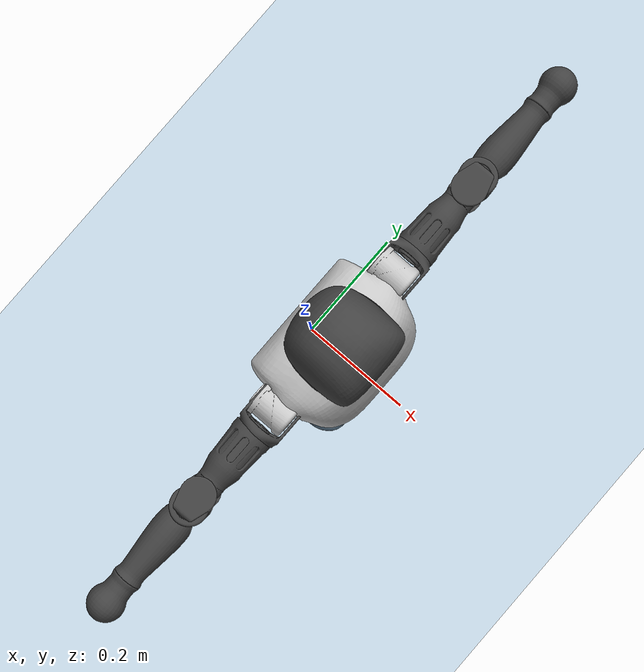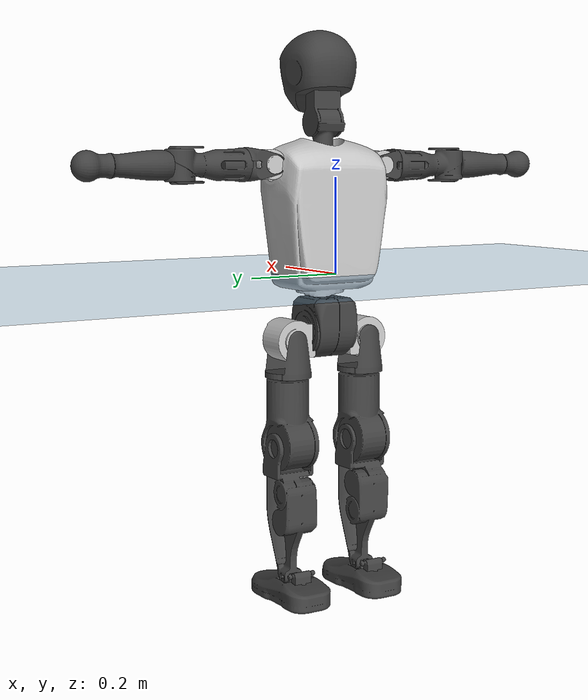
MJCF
<mujoco model="T1">
  <compiler angle="radian" assetdir="assets" balanceinertia="true" inertiafromgeom="false"/>

  <option timestep="0.005" density="1.2" viscosity="2e-05"/>

  <size nkey="1"/>

  <visual>
    <quality shadowsize="8192"/>
    <map shadowclip="0.5"/>
  </visual>

  <default>
    <default class="/">
      <joint armature="0.01" damping="0.01" frictionloss="0.1"/>
      <geom contype="0" conaffinity="0" group="1" solref="-1000 -80"/>
      <site size="0.01 0.005 0.005" group="5"/>
      <general forcelimited="true" biastype="affine" gainprm="25" biasprm="0 -25 -0.6"/>
      <default class="t1">
        <geom rgba="0.25 0.25 0.25 1"/>
        <default class="visual">
          <geom type="mesh" group="2"/>
        </default>
        <default class="collision">
          <geom group="3"/>
        </default>
        <default class="foot">
          <geom size="0.1115 0.05 0.015" type="box" condim="6" group="4" priority="1" solimp="0.015 1 0.015"/>
        </default>
        <default class="reward_collision_sphere">
          <geom group="5" rgba="1 0 0 1"/>
        </default>
      </default>
    </default>
  </default>

  <asset>
    <texture type="skybox" colorspace="auto" name="//unnamed_texture_0" builtin="gradient" rgb1="0.95 0.95 0.95" rgb2="0.95 0.95 0.95" width="100" height="600"/>
    <texture type="2d" colorspace="auto" name="texplane" builtin="checker" rgb1="0.345 0.575 0.748" rgb2="0.345 0.575 0.748" markrgb="1 1 1" width="512" height="512"/>
    <material name="MatPlane" class="/" texture="texplane" texuniform="true" texrepeat="2 2" specular="0.9"/>
    <mesh name="Trunk" class="/" file="Trunk.stl"/>
    <mesh name="H1" class="/" file="H1.stl"/>
    <mesh name="H2" class="/" file="H2.stl"/>
    <mesh name="AL1" class="/" file="AL1.stl"/>
    <mesh name="AL2" class="/" file="AL2.stl"/>
    <mesh name="AL3" class="/" file="AL3.stl"/>
    <mesh name="left_hand_link" class="/" file="left_hand_link.stl"/>
    <mesh name="AR1" class="/" file="AR1.stl"/>
    <mesh name="AR2" class="/" file="AR2.stl"/>
    <mesh name="AR3" class="/" file="AR3.stl"/>
    <mesh name="right_hand_link" class="/" file="right_hand_link.stl"/>
    <mesh name="Waist" class="/" file="Waist.stl"/>
    <mesh name="Hip_Pitch_Left" class="/" file="Hip_Pitch_Left.stl"/>
    <mesh name="Hip_Roll_Left" class="/" file="Hip_Roll_Left.stl"/>
    <mesh name="Hip_Yaw_Left" class="/" file="Hip_Yaw_Left.stl"/>
    <mesh name="Shank_Left" class="/" file="Shank_Left.stl"/>
    <mesh name="Ankle_Cross_Left" class="/" file="Ankle_Cross_Left.stl"/>
    <mesh name="left_foot_link" class="/" file="left_foot_link.stl"/>
    <mesh name="Hip_Pitch_Right" class="/" file="Hip_Pitch_Right.stl"/>
    <mesh name="Hip_Roll_Right" class="/" file="Hip_Roll_Right.stl"/>
    <mesh name="Hip_Yaw_Right" class="/" file="Hip_Yaw_Right.stl"/>
    <mesh name="Shank_Right" class="/" file="Shank_Right.stl"/>
    <mesh name="Ankle_Cross_Right" class="/" file="Ankle_Cross_Right.stl"/>
    <mesh name="right_foot_link" class="/" file="right_foot_link.stl"/>
  </asset>

  <worldbody>
    <geom name="floor" class="/" size="100 100 0.125" type="plane" group="0" material="MatPlane"/>
    <light name="toplight_shadow" class="/" pos="0 0 5" dir="0.0990148 0.0990148 -0.990148" type="directional" ambient="0.04 0.04 0.04" diffuse="0.55 0.55 0.55" specular="0.12 0.12 0.12"/>
    <light name="toplight_fill" class="/" pos="0 0 5" dir="0.0990148 0.0990148 -0.990148" type="directional" castshadow="false" ambient="0.04 0.04 0.04" diffuse="0.3 0.3 0.3" specular="0.08 0.08 0.08"/>
    <body name="trunk" childclass="t1" pos="9.67705e-05 -0.000498211 0.00123936" quat="1 2.73667e-05 -4.66355e-05 -5.03962e-05">
      <inertial pos="0.0447808 -0.00187203 0.108961" quat="0.99995 -0.000193402 -0.0100258 2.24579e-05" mass="8.59578" diaginertia="0.033124 0.0347059 0.0654767"/>
      <joint name="//unnamed_joint_0" type="free" armature="0" damping="0" frictionloss="0"/>
      <geom name="//unnamed_geom_1" class="visual" rgba="0.76 0.76 0.76 1" mesh="Trunk"/>
      <geom name="//unnamed_geom_2" class="collision" size="0.0673955 0.0898607 0.134791" pos="0.0488464 0 0.123751" type="box"/>
      <geom name="//unnamed_geom_3" class="reward_collision_sphere" size="0.10334" pos="0.0488464 0 0.103126"/>
      <geom name="//unnamed_geom_4" class="reward_collision_sphere" size="0.0134791" pos="0.0488464 0.0722885 0"/>
      <geom name="//unnamed_geom_5" class="reward_collision_sphere" size="0.0134791" pos="0.0488464 -0.0722885 0"/>
      <geom name="//unnamed_geom_6" class="reward_collision_sphere" size="0.0134791" pos="0.0488464 0.0909984 0.185627"/>
      <geom name="//unnamed_geom_7" class="reward_collision_sphere" size="0.0134791" pos="0.0488464 -0.0909984 0.185627"/>
      <site name="imu" pos="0.000328894 0.00961224 0.00428253" size="0.00898607"/>
      <camera name="track" pos="0 -1.70091 0" quat="0.707107 0.707107 0 0" mode="trackcom"/>
      <camera name="ego_camera" pos="0.0993211 0 0.43313" quat="-0.5 -0.5 0.5 0.5"/>
      <body name="H1" pos="0.0507653 -0.000527683 0.251178" quat="1 -0.00014869 0.000815301 0.000273366">
        <inertial pos="-0.000944548 -0.000838292 0.0583808" quat="0.767103 -0.0145836 0.00194273 0.641356" mass="0.317545" diaginertia="8.76544e-05 9.9976e-05 0.000179356"/>
        <joint name="AAHead_yaw" pos="0 0 0" axis="0.0017481 0.00510607 0.999985" range="-1.58721 1.61822" armature="0.00877338" damping="0.00258047" frictionloss="0.0879706"/>
        <geom name="//unnamed_geom_8" class="visual" mesh="H1"/>
        <body name="H2" pos="-0.000573137 0.000393639 0.0610179" quat="0.999999 0.000563248 0.000487403 -0.00101865">
          <inertial pos="0.0061349 0.000891842 0.10277" quat="0.988266 0.107297 -0.0739278 -0.079699" mass="0.457254" diaginertia="0.000728609 0.000861613 0.00196635"/>
          <joint name="Head_pitch" pos="0 0 0" axis="0.00517229 -0.999986 0.0014706" range="-1.23824 0.346202" armature="0.00916614" damping="0.00887826" frictionloss="0.0902903"/>
          <geom name="//unnamed_geom_9" class="visual" mesh="H2"/>
          <geom name="//unnamed_geom_10" class="collision" size="0.0718886" pos="0.00814107 0 0.113439"/>
          <geom name="//unnamed_geom_11" class="reward_collision_sphere" size="0.0808747" pos="0.0162821 0 0.103126"/>
        </body>
      </body>
      <body name="AL1" pos="0.0488998 0.0912447 0.225526" quat="1 0.000119941 0.000107858 -3.14628e-05">
        <inertial pos="-0.00163861 0.0378712 -0.000146762" quat="0.500076 0.502075 -0.508179 0.489488" mass="0.382032" diaginertia="0.000485458 0.000568359 0.000334814"/>
        <joint name="Left_Shoulder_Pitch" pos="0 0 0" axis="0.00214253 0.999997 0.000715698" range="-3.26115 1.2207" armature="0.00859771" damping="0.00819479" frictionloss="0.0926266"/>
        <geom name="//unnamed_geom_12" class="visual" rgba="0.76 0.76 0.76 1" mesh="AL1"/>
        <body name="AL2" pos="0.00190541 0.0405924 0.000210083" quat="0.999999 -0.000566622 0.000837895 -0.000194194">
          <inertial pos="0.00564304 0.0320263 -0.000374571" quat="0.488498 0.511269 -0.487752 0.51193" mass="0.112793" diaginertia="0.000139963 0.000148781 0.000199842"/>
          <joint name="Left_Shoulder_Roll" pos="0 0 0" axis="-0.999995 -0.00296472 -0.000792831" range="-1.56828 1.7537" armature="0.00925274" damping="0.0122245" frictionloss="0.088945"/>
          <geom name="//unnamed_geom_13" class="visual" mesh="AL2"/>
          <body name="AL3" pos="0.000792003 0.0525503 -0.000694611" quat="1 -0.000992225 4.69064e-05 9.52565e-05">
            <inertial pos="0.00186216 0.0720888 -0.00089032" quat="0.700991 0.713099 0.0074096 -0.00683307" mass="0.763516" diaginertia="0.00480729 0.00605972 0.000752044"/>
            <joint name="Left_Elbow_Pitch" pos="0 0 0" axis="-0.00267478 -0.999986 0.0044884" range="-2.28456 2.31739" armature="0.00971107" damping="0.0102073" frictionloss="0.100863"/>
            <geom name="//unnamed_geom_14" class="visual" mesh="AL3"/>
            <geom name="//unnamed_geom_15" class="collision" size="0.0269582 0.0673955" pos="0 0.0425226 0" quat="0.707105 0.707108 0 0" type="cylinder"/>
            <geom name="//unnamed_geom_16" class="reward_collision_sphere" size="0.0323499"/>
            <body name="left_hand_link" pos="0.000678215 0.124472 0.000662967" quat="0.999999 -0.00104311 0.000325952 0.000419971">
              <inertial pos="0.000464687 0.0942714 0.000915355" quat="0.708341 0.705859 0.00105204 0.00386713" mass="0.238426" diaginertia="0.00300294 0.00367855 0.000244933"/>
              <joint name="Left_Elbow_Yaw" pos="0 0 0" axis="0.00877257 0.00699228 0.999937" range="-2.43529 0.05001" armature="0.0083169" damping="0.00199162" frictionloss="0.0886127"/>
              <geom name="//unnamed_geom_17" class="visual" mesh="left_hand_link"/>
              <geom name="//unnamed_geom_18" class="collision" size="0.0269582 0.0786281" pos="0 0.110559 0" quat="0.707105 0.707108 0 0" type="cylinder"/>
              <geom name="//unnamed_geom_19" class="reward_collision_sphere" size="0.0449304"/>
              <geom name="//unnamed_geom_20" class="reward_collision_sphere" size="0.0314513" pos="0 0.0935498 0"/>
              <geom name="//unnamed_geom_21" class="reward_collision_sphere" size="0.0314513" pos="0 0.182847 0"/>
            </body>
          </body>
        </body>
      </body>
      <body name="AR1" pos="0.0472426 -0.0872013 0.223299" quat="1 8.08187e-05 0.000747357 -0.000191419">
        <inertial pos="-0.00121594 -0.0404296 0.000336746" quat="0.503925 0.496806 -0.507296 0.491827" mass="0.384411" diaginertia="0.000488179 0.000578373 0.000340575"/>
        <joint name="Right_Shoulder_Pitch" pos="0 0 0" axis="0.0101758 -0.999898 -0.0100013" range="-1.2258 3.35381" armature="0.00925749" damping="0.00426106" frictionloss="0.0793267"/>
        <geom name="//unnamed_geom_22" class="visual" rgba="0.76 0.76 0.76 1" mesh="AR1"/>
        <body name="AR2" pos="0.00191811 -0.0404759 -0.000832931" quat="1 4.62657e-05 2.08531e-05 4.54043e-05">
          <inertial pos="0.00437542 -0.0323309 0.000324855" quat="0.509135 0.488559 -0.515687 0.485961" mass="0.122716" diaginertia="0.000147895 0.000158511 0.000210328"/>
          <joint name="Right_Shoulder_Roll" pos="0 0 0" axis="-0.999994 -0.00326263 0.00137528" range="-1.7485 1.59412" armature="0.00912774" damping="0" frictionloss="0.0968944"/>
          <geom name="//unnamed_geom_23" class="visual" mesh="AR2"/>
          <body name="AR3" pos="-0.00228241 -0.0527178 -0.000616797" quat="1 -0.000122234 0.00012206 -4.03979e-05">
            <inertial pos="-0.000173886 -0.0713566 0.000686866" quat="0.705578 0.708631 -3.87915e-05 0.00139443" mass="0.776616" diaginertia="0.00474758 0.00586295 0.000749327"/>
            <joint name="Right_Elbow_Pitch" pos="0 0 0" axis="0.00226217 0.999996 -0.00177776" range="-2.29831 2.23231" armature="0.0087708" damping="0.0155411" frictionloss="0.0898255"/>
            <geom name="//unnamed_geom_24" class="visual" mesh="AR3"/>
            <geom name="//unnamed_geom_25" class="collision" size="0.0269582 0.0673955" pos="0 -0.0425226 0" quat="0.707105 0.707108 0 0" type="cylinder"/>
            <geom name="//unnamed_geom_26" class="reward_collision_sphere" size="0.0323499"/>
            <body name="right_hand_link" pos="-0.000573839 -0.125199 0.00097722" quat="1 6.59028e-05 6.32982e-05 8.4328e-05">
              <inertial pos="-0.000463365 -0.0930903 -0.00126723" quat="0.704709 0.709496 -0.000565923 0.00042081" mass="0.228841" diaginertia="0.00290483 0.00360301 0.000248979"/>
              <joint name="Right_Elbow_Yaw" pos="0 0 0" axis="-0.00180919 -0.00792729 0.999967" range="-0.0203038 2.47494" armature="0.00895818" damping="0.00778892" frictionloss="0.0877677"/>
              <geom name="//unnamed_geom_27" class="visual" mesh="right_hand_link"/>
              <geom name="//unnamed_geom_28" class="collision" size="0.0269582 0.0786281" pos="0 -0.110559 0" quat="0.707105 0.707108 0 0" type="cylinder"/>
              <geom name="//unnamed_geom_29" class="reward_collision_sphere" size="0.0449304"/>
              <geom name="//unnamed_geom_30" class="reward_collision_sphere" size="0.0314513" pos="0 -0.0935498 0"/>
              <geom name="//unnamed_geom_31" class="reward_collision_sphere" size="0.0314513" pos="0 -0.182847 0"/>
            </body>
          </body>
        </body>
      </body>
      <body name="Waist" pos="0.0485754 -0.00222772 -0.119619" quat="1 0.000555151 0.00039461 0.000318867">
        <inertial pos="0.00154441 -0.00238282 0.00722334" quat="0.98358 0.000518238 -0.180451 0.00277244" mass="1.84102" diaginertia="0.00185421 0.00228407 0.00542101"/>
        <joint name="Waist" pos="0 0 0" axis="0.000309918 -0.00331532 0.999994" range="-1.57233 1.57124" armature="0.00849749" damping="0.00234113" frictionloss="0.0795919"/>
        <geom name="//unnamed_geom_32" class="visual" mesh="Waist"/>
        <body name="Hip_Pitch_Left" pos="0.000407868 0.088291 0.00147045" quat="0.999999 0.000557315 -0.00066266 -0.00065058">
          <inertial pos="0.00126692 -0.0053971 -0.0191068" quat="0.975468 0.219592 0.0154373 0.00164458" mass="0.739145" diaginertia="0.000655239 0.00067308 0.00148029"/>
          <joint name="Left_Hip_Pitch" pos="0 0 0" axis="0.00723392 0.999951 0.00677213" range="-1.79496 1.55194" armature="0.00953553" damping="0.0144329" frictionloss="0.0857879"/>
          <geom name="//unnamed_geom_33" class="visual" rgba="0.76 0.76 0.76 1" mesh="Hip_Pitch_Left"/>
          <body name="Hip_Roll_Left" pos="0.00224743 -4.71367e-05 -0.0206414" quat="0.999999 -0.000402473 -0.00120201 0.000361346">
            <inertial pos="-0.000882895 -0.00170629 -0.056429" quat="0.69853 -0.00280806 -0.00685083 0.715542" mass="0.27939" diaginertia="0.000605767 0.000669181 0.000604172"/>
            <joint name="Left_Hip_Roll" pos="0 0 0" axis="-0.999937 -0.0111481 0.00109176" range="-1.59007 0.245487" armature="0.00986068" damping="0.00887854" frictionloss="0.0875104"/>
            <geom name="//unnamed_geom_34" class="visual" mesh="Hip_Roll_Left"/>
            <geom name="//unnamed_geom_35" class="reward_collision_sphere" size="0.0494234"/>
            <body name="Hip_Yaw_Left" pos="0.00263568 -0.00116603 -0.0832727" quat="0.999999 7.17663e-05 0.00124792 0.000411164">
              <inertial pos="-0.00591568 -0.000221902 -0.0919737" quat="0.696027 -0.0346014 -0.0309177 0.716514" mass="1.57862" diaginertia="0.00921502 0.0113643 0.00310615"/>
              <joint name="Left_Hip_Yaw" pos="0 0 0" axis="0.00417383 -0.003435 -0.999985" range="-1.02149 0.961094" armature="0.00897471" damping="0.0148546" frictionloss="0.0876294"/>
              <geom name="//unnamed_geom_36" class="visual" mesh="Hip_Yaw_Left"/>
              <geom name="//unnamed_geom_37" class="collision" size="0.0449304 0.0718886" type="cylinder"/>
              <body name="Shank_Left" pos="-0.0110485 0.000187344 -0.14123" quat="1 4.80223e-05 -0.000140533 -0.000122531">
                <inertial pos="-0.00310919 -0.00159232 -0.12776" quat="0.997587 -0.00167355 -0.0235841 0.0652737" mass="1.25034" diaginertia="0.0124381 0.0150846 0.00212856"/>
                <joint name="Left_Knee_Pitch" pos="0 0 0" axis="-0.000258189 1 -5.3914e-05" range="-0.00329756 2.32716" armature="0.00902348" damping="0.0123927" frictionloss="0.0912957"/>
                <geom name="//unnamed_geom_38" class="visual" mesh="Shank_Left"/>
                <geom name="//unnamed_geom_39" class="collision" size="0.0449304 0.0673955" pos="0 0 -0.123751" type="cylinder"/>
                <geom name="//unnamed_geom_40" class="reward_collision_sphere" size="0.0584095"/>
                <body name="Ankle_Cross_Left" pos="-0.0011813 -0.000987001 -0.286994" quat="1 -6.01945e-05 3.43835e-05 4.91184e-06">
                  <inertial pos="-0.00182333 -0.000852899 -0.0080369" quat="0.44329 0.550679 0.551085 0.443341" mass="0.0550417" diaginertia="1.04323e-05 1.16724e-05 1.33953e-05"/>
                  <joint name="Left_Ankle_Pitch" pos="0 0 0" axis="0.000515123 1 0.000356152" range="-0.849837 0.328813" armature="0.00927733" damping="0.00771014" frictionloss="0.0855994"/>
                  <geom name="//unnamed_geom_41" class="visual" mesh="Ankle_Cross_Left"/>
                  <body name="left_foot_link" pos="-0.00141415 0.00124099 -0.012062" quat="1 -0.00033434 -1.55054e-05 1.3098e-05">
                    <inertial pos="-0.0010566 0.0016056 -0.00929651" quat="0.00195672 0.621299 0.000890204 0.78357" mass="0.477246" diaginertia="0.000982817 0.00104622 0.0025022"/>
                    <joint name="Left_Ankle_Roll" pos="0 0 0" axis="-0.999986 0.00119368 -0.00515856" range="-0.421495 0.486765" armature="0.00998745" damping="0.0110135" frictionloss="0.0853427"/>
                    <geom name="//unnamed_geom_42" class="visual" mesh="left_foot_link"/>
                    <geom name="left_foot" class="foot" size="0.109256 0.0476759 0.0143365" pos="0.00814107 0 -0.0154689"/>
                    <geom name="//unnamed_geom_44" class="reward_collision_sphere" size="0.0467276" pos="0.00814107 0 -0.0154689"/>
                    <geom name="//unnamed_geom_45" class="reward_collision_sphere" size="0.0269582" pos="0.0773402 -0.0195604 -0.0154689"/>
                    <geom name="//unnamed_geom_46" class="reward_collision_sphere" size="0.0269582" pos="-0.0569875 -0.0195604 -0.0154689"/>
                    <site name="left_foot" class="foot" pos="0.00814107 0 -0.0154689" size="0.00898607"/>
                  </body>
                </body>
              </body>
            </body>
          </body>
        </body>
        <body name="Hip_Pitch_Right" pos="0.0010976 -0.0898223 -0.00136303" quat="1 4.68313e-05 4.03491e-05 3.65745e-05">
          <inertial pos="-0.00154427 0.00645013 -0.0183492" quat="0.973493 -0.228198 0.0147409 -0.00439755" mass="0.753235" diaginertia="0.000652469 0.000654144 0.00146721"/>
          <joint name="Right_Hip_Pitch" pos="0 0 0" axis="-0.00335506 -0.999987 0.00376581" range="-1.58802 1.79524" armature="0.010163" damping="0.0121675" frictionloss="0.0918127"/>
          <geom name="//unnamed_geom_47" class="visual" rgba="0.76 0.76 0.76 1" mesh="Hip_Pitch_Right"/>
          <body name="Hip_Roll_Right" pos="9.00084e-05 -0.000439133 -0.0187401" quat="1 2.43957e-05 4.26449e-06 3.43025e-05">
            <inertial pos="0.00140847 -0.00279495 -0.0564385" quat="0.710845 0.00259642 -0.00391954 0.703333" mass="0.269062" diaginertia="0.000604031 0.00065588 0.000581922"/>
            <joint name="Right_Hip_Roll" pos="0 0 0" axis="-0.999996 -0.00272988 -0.001113" range="-0.211211 1.57047" armature="0.00914426" damping="0.00264978" frictionloss="0.0839472"/>
            <geom name="//unnamed_geom_48" class="visual" mesh="Hip_Roll_Right"/>
            <geom name="//unnamed_geom_49" class="reward_collision_sphere" size="0.0494234"/>
            <body name="Hip_Yaw_Right" pos="0.00191681 -0.00101514 -0.0844524" quat="1 0.000675105 -0.000286717 -0.000428453">
              <inertial pos="-0.00518032 -0.00299455 -0.0928028" quat="0.713473 -0.0274562 -0.0315303 0.699435" mass="1.52516" diaginertia="0.00894131 0.0109204 0.00296541"/>
              <joint name="Right_Hip_Yaw" pos="0 0 0" axis="0.00383212 0.00513361 -0.999979" range="-1.00556 1.03732" armature="0.00927706" damping="0.00511761" frictionloss="0.0895936"/>
              <geom name="//unnamed_geom_50" class="visual" mesh="Hip_Yaw_Right"/>
              <geom name="//unnamed_geom_51" class="collision" size="0.0449304 0.0718886" type="cylinder"/>
              <body name="Shank_Right" pos="-0.0108547 -0.00155074 -0.137593" quat="1 1.36501e-06 -8.03396e-05 -0.000164492">
                <inertial pos="-0.00436255 0.000324203 -0.125933" quat="0.999155 -0.00182696 -0.0238327 -0.0334232" mass="1.27342" diaginertia="0.0119434 0.0154421 0.00225103"/>
                <joint name="Right_Knee_Pitch" pos="0 0 0" axis="0.000202054 -0.999999 -0.00123823" range="-2.34824 -0.0192167" armature="0.00900229" damping="0.00350388" frictionloss="0.0905465"/>
                <geom name="//unnamed_geom_52" class="visual" mesh="Shank_Right"/>
                <geom name="//unnamed_geom_53" class="collision" size="0.0449304 0.0673955" pos="0 0 -0.123751" type="cylinder"/>
                <geom name="//unnamed_geom_54" class="reward_collision_sphere" size="0.0584095"/>
                <body name="Ankle_Cross_Right" pos="0.00103723 -0.00151566 -0.288915" quat="1 -4.59725e-05 0.000305957 -0.00065607">
                  <inertial pos="-0.00198788 -0.000125243 -0.0105185" quat="0.452476 0.544929 0.547846 0.445176" mass="0.0517061" diaginertia="9.79576e-06 1.13234e-05 1.25167e-05"/>
                  <joint name="Right_Ankle_Pitch" pos="0 0 0" axis="-0.00142127 -0.999957 -0.00921569" range="-0.331524 0.8497" armature="0.00913522" damping="0.000609208" frictionloss="0.0831938"/>
                  <geom name="//unnamed_geom_55" class="visual" mesh="Ankle_Cross_Right"/>
                  <body name="right_foot_link" pos="-0.00106695 -0.000544145 -0.0127142" quat="1 2.73502e-05 9.09785e-05 0.000438275">
                    <inertial pos="-0.00254394 -0.00123422 -0.0091871" quat="0.000464039 0.624155 0.00120915 0.781299" mass="0.496226" diaginertia="0.000977322 0.00107311 0.00255304"/>
                    <joint name="Right_Ankle_Roll" pos="0 0 0" axis="-1 -7.64877e-05 0.000374559" range="-0.425975 0.450088" armature="0.00882629" damping="0.0203906" frictionloss="0.090747"/>
                    <geom name="//unnamed_geom_56" class="visual" mesh="right_foot_link"/>
                    <geom name="right_foot" class="foot" size="0.0944035 0.0457321 0.0134882" pos="0.00814107 0 -0.0154689"/>
                    <geom name="//unnamed_geom_58" class="reward_collision_sphere" size="0.0359443"/>
                    <geom name="//unnamed_geom_59" class="reward_collision_sphere" size="0.0269582" pos="0.00814107 0 -0.0154689"/>
                    <geom name="//unnamed_geom_60" class="reward_collision_sphere" size="0.0269582" pos="0.0773402 0.0195604 -0.0154689"/>
                    <geom name="//unnamed_geom_61" class="reward_collision_sphere" size="0.0269582" pos="-0.0569875 0.0195604 -0.0154689"/>
                    <site name="right_foot" class="foot" pos="0.00814107 0 -0.0154689" size="0.00898607"/>
                  </body>
                </body>
              </body>
            </body>
          </body>
        </body>
      </body>
    </body>
  </worldbody>

  <contact>
    <pair class="/" geom1="floor" geom2="left_foot" name="//unnamed_contact_0"/>
    <pair class="/" geom1="floor" geom2="right_foot" name="//unnamed_contact_1"/>
  </contact>

  <actuator>
    <general name="AAHead_yaw" class="/" joint="AAHead_yaw" forcerange="-6.48286 6.48286" gainprm="22.163" biasprm="0 -22.163 -0.522861"/>
    <general name="Head_pitch" class="/" joint="Head_pitch" forcerange="-6.53295 6.53295" gainprm="22.163" biasprm="0 -22.163 -0.522861"/>
    <general name="Left_Shoulder_Pitch" class="/" joint="Left_Shoulder_Pitch" forcerange="-16.6146 16.6146" gainprm="22.163" biasprm="0 -22.163 -0.522861"/>
    <general name="Left_Shoulder_Roll" class="/" joint="Left_Shoulder_Roll" forcerange="-16.3232 16.3232" gainprm="22.163" biasprm="0 -22.163 -0.522861"/>
    <general name="Left_Elbow_Pitch" class="/" joint="Left_Elbow_Pitch" forcerange="-17.5506 17.5506" gainprm="22.163" biasprm="0 -22.163 -0.522861"/>
    <general name="Left_Elbow_Yaw" class="/" joint="Left_Elbow_Yaw" forcerange="-15.9364 15.9364" gainprm="22.163" biasprm="0 -22.163 -0.522861"/>
    <general name="Right_Shoulder_Pitch" class="/" joint="Right_Shoulder_Pitch" forcerange="-14.8237 14.8237" gainprm="22.163" biasprm="0 -22.163 -0.522861"/>
    <general name="Right_Shoulder_Roll" class="/" joint="Right_Shoulder_Roll" forcerange="-16.098 16.098" gainprm="22.163" biasprm="0 -22.163 -0.522861"/>
    <general name="Right_Elbow_Pitch" class="/" joint="Right_Elbow_Pitch" forcerange="-17.5858 17.5858" gainprm="22.163" biasprm="0 -22.163 -0.522861"/>
    <general name="Right_Elbow_Yaw" class="/" joint="Right_Elbow_Yaw" forcerange="-15.62 15.62" gainprm="22.163" biasprm="0 -22.163 -0.522861"/>
    <general name="Waist" class="/" joint="Waist" forcerange="-27.6112 27.6112" gainprm="22.163" biasprm="0 -22.163 -0.522861"/>
    <general name="Left_Hip_Pitch" class="/" joint="Left_Hip_Pitch" forcerange="-41.8935 41.8935" gainprm="22.163" biasprm="0 -22.163 -0.522861"/>
    <general name="Left_Hip_Roll" class="/" joint="Left_Hip_Roll" forcerange="-29.0195 29.0195" gainprm="22.163" biasprm="0 -22.163 -0.522861"/>
    <general name="Left_Hip_Yaw" class="/" joint="Left_Hip_Yaw" forcerange="-24.4626 24.4626" gainprm="22.163" biasprm="0 -22.163 -0.522861"/>
    <general name="Left_Knee_Pitch" class="/" joint="Left_Knee_Pitch" forcerange="-56.0429 56.0429" gainprm="22.163" biasprm="0 -22.163 -0.522861"/>
    <general name="Left_Ankle_Pitch" class="/" joint="Left_Ankle_Pitch" forcerange="-16.242 16.242" gainprm="22.163" biasprm="0 -22.163 -0.522861"/>
    <general name="Left_Ankle_Roll" class="/" joint="Left_Ankle_Roll" forcerange="-13.2036 13.2036" gainprm="22.163" biasprm="0 -22.163 -0.522861"/>
    <general name="Right_Hip_Pitch" class="/" joint="Right_Hip_Pitch" forcerange="-40.4927 40.4927" gainprm="22.163" biasprm="0 -22.163 -0.522861"/>
    <general name="Right_Hip_Roll" class="/" joint="Right_Hip_Roll" forcerange="-26.9605 26.9605" gainprm="22.163" biasprm="0 -22.163 -0.522861"/>
    <general name="Right_Hip_Yaw" class="/" joint="Right_Hip_Yaw" forcerange="-27.0911 27.0911" gainprm="22.163" biasprm="0 -22.163 -0.522861"/>
    <general name="Right_Knee_Pitch" class="/" joint="Right_Knee_Pitch" forcerange="-57.4167 57.4167" gainprm="22.163" biasprm="0 -22.163 -0.522861"/>
    <general name="Right_Ankle_Pitch" class="/" joint="Right_Ankle_Pitch" forcerange="-18.1374 18.1374" gainprm="22.163" biasprm="0 -22.163 -0.522861"/>
    <general name="Right_Ankle_Roll" class="/" joint="Right_Ankle_Roll" forcerange="-12.3364 12.3364" gainprm="22.163" biasprm="0 -22.163 -0.522861"/>
  </actuator>

  <sensor>
    <gyro site="imu" name="imu_angular_velocity"/>
    <velocimeter site="imu" name="imu_linear_velocity"/>
    <framelinvel objtype="site" objname="left_foot" name="left_foot_global_linear_velocity"/>
    <framelinvel objtype="site" objname="right_foot" name="right_foot_global_linear_velocity"/>
  </sensor>

  <keyframe>
    <key name="home" qpos="0 0 0.6385 1 0 0 0 0 0 0 1.4 0 -0.4 0 -1.4 0 0.4 0 -0.4 0 0 0.8 -0.4 0 0.4 0 0 -0.8 0.4 0"/>
  </keyframe>
</mujoco>
